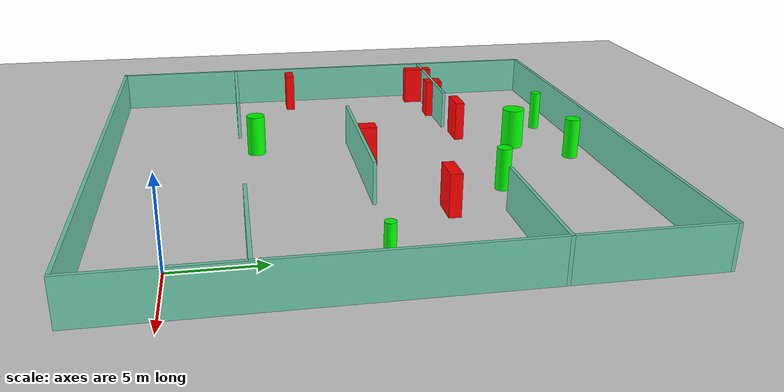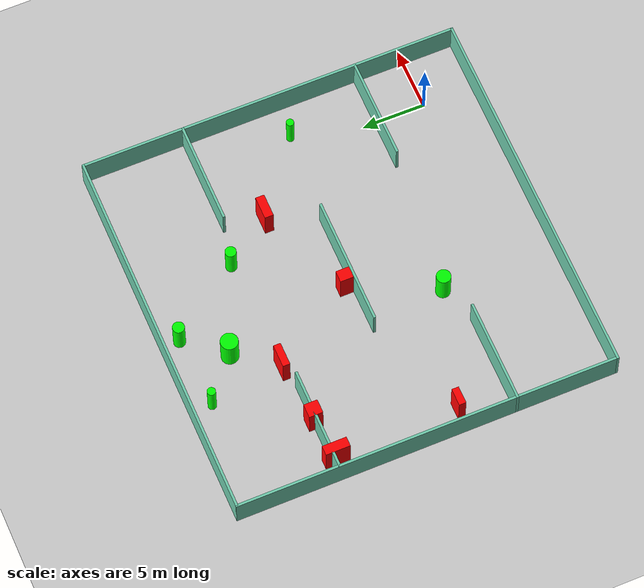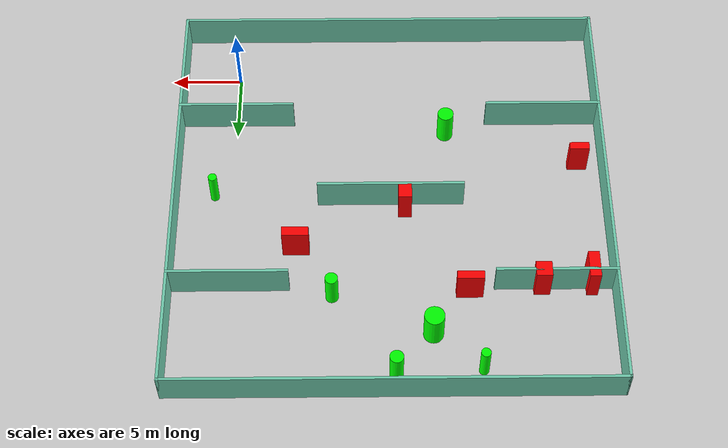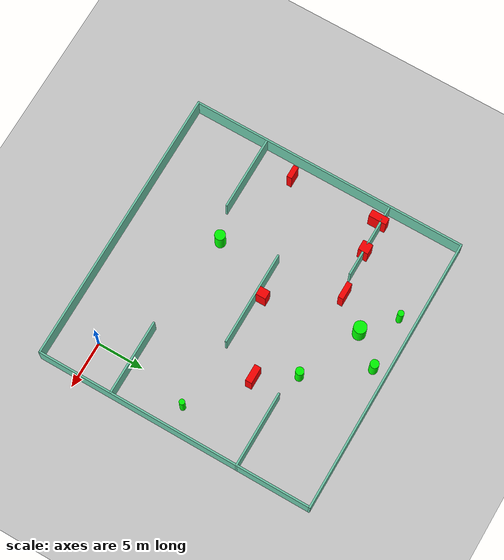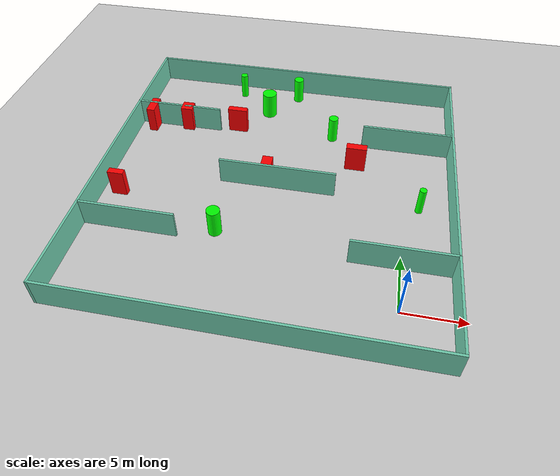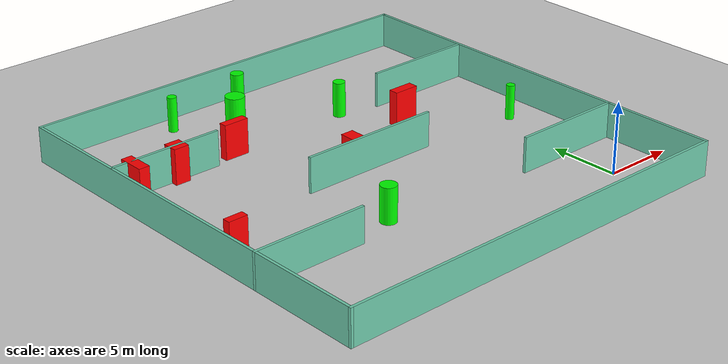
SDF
<sdf version="1.7">
 <world name="default">
  <light name="sun" type="directional">
   <pose>0 0 10 0 -0 0</pose>
   <diffuse>0.8 0.8 0.8 1</diffuse>
   <specular>0.2 0.2 0.2 1</specular>
   <attenuation>
    <range>1000</range>
    <constant>0.9</constant>
    <linear>0.01</linear>
    <quadratic>0.001</quadratic>
   </attenuation>
   <direction>-0.5 0.1 -0.9</direction>
   <spot><inner_angle>0</inner_angle><outer_angle>0</outer_angle><falloff>0</falloff></spot>
  </light>
  <model name="ground_plane">
   <static>1</static>
   <link name="link">
    <collision name="collision">
     <geometry><plane><normal>0 0 1</normal><size>100 100</size></plane></geometry>
     <surface>
      <contact><collide_bitmask>65535</collide_bitmask></contact>
      <friction><ode><mu>100</mu><mu2>50</mu2></ode></friction>
     </surface>
    </collision>
    <visual name="visual">
     <cast_shadows>0</cast_shadows>
     <geometry><plane><normal>0 0 1</normal><size>100 100</size></plane></geometry>
     <material>
      <script><uri>file://media/materials/scripts/gazebo.material</uri><name>Gazebo/Grey</name></script>
     </material>
    </visual>
   </link>
  </model>
  <gravity>0 0 -9.8</gravity>
  <magnetic_field>6e-06 2.3e-05 -4.2e-05</magnetic_field>
  <atmosphere type="adiabatic"/>
  <physics type="ode">
   <max_step_size>0.001</max_step_size>
   <real_time_factor>1</real_time_factor>
   <real_time_update_rate>1000</real_time_update_rate>
  </physics>
  <scene><ambient>0.4 0.4 0.4 1</ambient><background>0.7 0.7 0.7 1</background><shadows>1</shadows></scene>
  <spherical_coordinates>
   <surface_model>EARTH_WGS84</surface_model>
   <latitude_deg>0</latitude_deg>
   <longitude_deg>0</longitude_deg>
   <elevation>0</elevation>
   <heading_deg>0</heading_deg>
  </spherical_coordinates>
  <model name="my_base_walls">
   <link name="Wall_10">
    <collision name="Wall_10_Collision">
     <geometry><box><size>8.2 0.2 2.5</size></box></geometry>
     <pose>0 0 1.25 0 -0 0</pose>
    </collision>
    <visual name="Wall_10_Visual">
     <pose>0 0 1.25 0 -0 0</pose>
     <geometry><box><size>8.2 0.2 2.5</size></box></geometry>
     <material>
      <script><uri>file://media/materials/scripts/gazebo.material</uri><name>Gazebo/Grey</name></script>
      <ambient>0.435294 0.796078 0.67451 1</ambient>
     </material>
     <meta><layer>0</layer></meta>
    </visual>
    <pose>-11 -7 0 0 -0 0</pose>
   </link>
   <link name="Wall_12">
    <collision name="Wall_12_Collision">
     <geometry><box><size>8.2 0.2 2.5</size></box></geometry>
     <pose>0 0 1.25 0 -0 0</pose>
    </collision>
    <visual name="Wall_12_Visual">
     <pose>0 0 1.25 0 -0 0</pose>
     <geometry><box><size>8.2 0.2 2.5</size></box></geometry>
     <material>
      <script><uri>file://media/materials/scripts/gazebo.material</uri><name>Gazebo/Grey</name></script>
      <ambient>0.435294 0.796078 0.67451 1</ambient>
     </material>
     <meta><layer>0</layer></meta>
    </visual>
    <pose>-11 7 0 0 -0 0</pose>
   </link>
   <link name="Wall_14">
    <collision name="Wall_14_Collision">
     <geometry><box><size>8.2 0.2 2.5</size></box></geometry>
     <pose>0 0 1.25 0 -0 0</pose>
    </collision>
    <visual name="Wall_14_Visual">
     <pose>0 0 1.25 0 -0 0</pose>
     <geometry><box><size>8.2 0.2 2.5</size></box></geometry>
     <material>
      <script><uri>file://media/materials/scripts/gazebo.material</uri><name>Gazebo/Grey</name></script>
      <ambient>0.435294 0.796078 0.67451 1</ambient>
     </material>
     <meta><layer>0</layer></meta>
    </visual>
    <pose>11 7 0 0 -0 3.14159</pose>
   </link>
   <link name="Wall_16">
    <collision name="Wall_16_Collision">
     <geometry><box><size>10.2 0.2 2.5</size></box></geometry>
     <pose>0 0 1.25 0 -0 0</pose>
    </collision>
    <visual name="Wall_16_Visual">
     <pose>0 0 1.25 0 -0 0</pose>
     <geometry><box><size>10.2 0.2 2.5</size></box></geometry>
     <material>
      <script><uri>file://media/materials/scripts/gazebo.material</uri><name>Gazebo/Grey</name></script>
      <ambient>0.435294 0.796078 0.67451 1</ambient>
     </material>
     <meta><layer>0</layer></meta>
    </visual>
    <pose>0 0 0 0 -0 3.14159</pose>
   </link>
   <link name="Wall_2">
    <collision name="Wall_2_Collision">
     <geometry><box><size>30.2 0.2 2.5</size></box></geometry>
     <pose>0 0 1.25 0 -0 0</pose>
    </collision>
    <visual name="Wall_2_Visual">
     <pose>0 0 1.25 0 -0 0</pose>
     <geometry><box><size>30.2 0.2 2.5</size></box></geometry>
     <material>
      <script><uri>file://media/materials/scripts/gazebo.material</uri><name>Gazebo/Grey</name></script>
      <ambient>0.435294 0.796078 0.67451 1</ambient>
     </material>
     <meta><layer>0</layer></meta>
    </visual>
    <pose>0 -15 0 0 -0 3.14159</pose>
   </link>
   <link name="Wall_3">
    <collision name="Wall_3_Collision">
     <geometry><box><size>30.2 0.2 2.5</size></box></geometry>
     <pose>0 0 1.25 0 -0 0</pose>
    </collision>
    <visual name="Wall_3_Visual">
     <pose>0 0 1.25 0 -0 0</pose>
     <geometry><box><size>30.2 0.2 2.5</size></box></geometry>
     <material>
      <script><uri>file://media/materials/scripts/gazebo.material</uri><name>Gazebo/Grey</name></script>
      <ambient>0.435294 0.796078 0.67451 1</ambient>
     </material>
     <meta><layer>0</layer></meta>
    </visual>
    <pose>-15 0 0 0 -0 1.5708</pose>
   </link>
   <link name="Wall_4">
    <collision name="Wall_4_Collision">
     <geometry><box><size>30.2 0.2 2.5</size></box></geometry>
     <pose>0 0 1.25 0 -0 0</pose>
    </collision>
    <visual name="Wall_4_Visual">
     <pose>0 0 1.25 0 -0 0</pose>
     <geometry><box><size>30.2 0.2 2.5</size></box></geometry>
     <material>
      <script><uri>file://media/materials/scripts/gazebo.material</uri><name>Gazebo/Grey</name></script>
      <ambient>0.435294 0.796078 0.67451 1</ambient>
     </material>
     <meta><layer>0</layer></meta>
    </visual>
    <pose>0 15 0 0 -0 0</pose>
   </link>
   <link name="Wall_6">
    <collision name="Wall_6_Collision">
     <geometry><box><size>30.2 0.2 2.5</size></box></geometry>
     <pose>0 0 1.25 0 -0 0</pose>
    </collision>
    <visual name="Wall_6_Visual">
     <pose>0 0 1.25 0 -0 0</pose>
     <geometry><box><size>30.2 0.2 2.5</size></box></geometry>
     <material>
      <script><uri>file://media/materials/scripts/gazebo.material</uri><name>Gazebo/Grey</name></script>
      <ambient>0.435294 0.796078 0.67451 1</ambient>
     </material>
     <meta><layer>0</layer></meta>
    </visual>
    <pose>15 0 0 0 -0 1.5708</pose>
   </link>
   <link name="Wall_8">
    <collision name="Wall_8_Collision">
     <geometry><box><size>8.2 0.2 2.5</size></box></geometry>
     <pose>0 0 1.25 0 -0 0</pose>
    </collision>
    <visual name="Wall_8_Visual">
     <pose>0 0 1.25 0 -0 0</pose>
     <geometry><box><size>8.2 0.2 2.5</size></box></geometry>
     <material>
      <script><uri>file://media/materials/scripts/gazebo.material</uri><name>Gazebo/Grey</name></script>
      <ambient>0.435294 0.796078 0.67451 1</ambient>
     </material>
     <meta><layer>0</layer></meta>
    </visual>
    <pose>11 -7 0 0 -0 3.14159</pose>
   </link>
   <static>1</static>
   <pose>-11 11 0 0 -0 0</pose>
  </model>
  <model name="cylinder1">
   <static>1</static>
   <link name="link">
    <inertial>
     <mass>1</mass>
     <inertia><ixx>0.5</ixx><ixy>0</ixy><ixz>0</ixz><iyy>0.5</iyy><iyz>0</iyz><izz>1</izz></inertia>
    </inertial>
    <collision name="collision">
     <geometry><cylinder><radius>0.3002259259225724</radius><length>2.5</length></cylinder></geometry>
    </collision>
    <visual name="visual">
     <geometry><cylinder><radius>0.3002259259225724</radius><length>2.5</length></cylinder></geometry>
     <material>
      <ambient>0 1 0 1</ambient>
      <diffuse>0 1 0 1</diffuse>
      <specular>0.1 0.1 0.1 1</specular>
      <emissive>0 0 0 0</emissive>
     </material>
    </visual>
   </link>
   <pose>1.3487859524886332 10.404396722732802 1.25 0 0 0</pose>
  </model>
  <model name="cylinder2">
   <static>1</static>
   <link name="link">
    <inertial>
     <mass>1</mass>
     <inertia><ixx>0.5</ixx><ixy>0</ixy><ixz>0</ixz><iyy>0.5</iyy><iyz>0</iyz><izz>1</izz></inertia>
    </inertial>
    <collision name="collision">
     <geometry><cylinder><radius>0.4616088593058224</radius><length>2.5</length></cylinder></geometry>
    </collision>
    <visual name="visual">
     <geometry><cylinder><radius>0.4616088593058224</radius><length>2.5</length></cylinder></geometry>
     <material>
      <ambient>0 1 0 1</ambient>
      <diffuse>0 1 0 1</diffuse>
      <specular>0.1 0.1 0.1 1</specular>
      <emissive>0 0 0 0</emissive>
     </material>
    </visual>
   </link>
   <pose>-11.209790147286007 24.5110482097564 1.25 0 0 0</pose>
  </model>
  <model name="cylinder3">
   <static>1</static>
   <link name="link">
    <inertial>
     <mass>1</mass>
     <inertia><ixx>0.5</ixx><ixy>0</ixy><ixz>0</ixz><iyy>0.5</iyy><iyz>0</iyz><izz>1</izz></inertia>
    </inertial>
    <collision name="collision">
     <geometry><cylinder><radius>0.5621917603480975</radius><length>2.5</length></cylinder></geometry>
    </collision>
    <visual name="visual">
     <geometry><cylinder><radius>0.5621917603480975</radius><length>2.5</length></cylinder></geometry>
     <material>
      <ambient>0 1 0 1</ambient>
      <diffuse>0 1 0 1</diffuse>
      <specular>0.1 0.1 0.1 1</specular>
      <emissive>0 0 0 0</emissive>
     </material>
    </visual>
   </link>
   <pose>-14.983286583736072 5.003216645797247 1.25 0 0 0</pose>
  </model>
  <model name="cylinder4">
   <static>1</static>
   <link name="link">
    <inertial>
     <mass>1</mass>
     <inertia><ixx>0.5</ixx><ixy>0</ixy><ixz>0</ixz><iyy>0.5</iyy><iyz>0</iyz><izz>1</izz></inertia>
    </inertial>
    <collision name="collision">
     <geometry><cylinder><radius>0.6831128610199922</radius><length>2.5</length></cylinder></geometry>
    </collision>
    <visual name="visual">
     <geometry><cylinder><radius>0.6831128610199922</radius><length>2.5</length></cylinder></geometry>
     <material>
      <ambient>0 1 0 1</ambient>
      <diffuse>0 1 0 1</diffuse>
      <specular>0.1 0.1 0.1 1</specular>
      <emissive>0 0 0 0</emissive>
     </material>
    </visual>
   </link>
   <pose>-13.715510335307533 21.530867923700857 1.25 0 0 0</pose>
  </model>
  <model name="cylinder5">
   <static>1</static>
   <link name="link">
    <inertial>
     <mass>1</mass>
     <inertia><ixx>0.5</ixx><ixy>0</ixy><ixz>0</ixz><iyy>0.5</iyy><iyz>0</iyz><izz>1</izz></inertia>
    </inertial>
    <collision name="collision">
     <geometry><cylinder><radius>0.43373837702119755</radius><length>2.5</length></cylinder></geometry>
    </collision>
    <visual name="visual">
     <geometry><cylinder><radius>0.43373837702119755</radius><length>2.5</length></cylinder></geometry>
     <material>
      <ambient>0 1 0 1</ambient>
      <diffuse>0 1 0 1</diffuse>
      <specular>0.1 0.1 0.1 1</specular>
      <emissive>0 0 0 0</emissive>
     </material>
    </visual>
   </link>
   <pose>-6.96425481458351 18.642731694744786 1.25 0 0 0</pose>
  </model>
  <model name="cylinder6">
   <static>1</static>
   <link name="link">
    <inertial>
     <mass>1</mass>
     <inertia><ixx>0.5</ixx><ixy>0</ixy><ixz>0</ixz><iyy>0.5</iyy><iyz>0</iyz><izz>1</izz></inertia>
    </inertial>
    <collision name="collision">
     <geometry><cylinder><radius>0.32856601237879574</radius><length>2.5</length></cylinder></geometry>
    </collision>
    <visual name="visual">
     <geometry><cylinder><radius>0.32856601237879574</radius><length>2.5</length></cylinder></geometry>
     <material>
      <ambient>0 1 0 1</ambient>
      <diffuse>0 1 0 1</diffuse>
      <specular>0.1 0.1 0.1 1</specular>
      <emissive>0 0 0 0</emissive>
     </material>
    </visual>
   </link>
   <pose>-16.931002416569733 24.255039045631367 1.25 0 0 0</pose>
  </model>
  <model name="box1">
   <static>1</static>
   <link name="link">
    <inertial>
     <mass>1</mass>
     <inertia><ixx>0.083</ixx><ixy>0</ixy><ixz>0</ixz><iyy>0.083</iyy><iyz>0</iyz><izz>0.083</izz></inertia>
    </inertial>
    <collision name="collision">
     <geometry><box><size>1.0894194285023764 1.0900738720086358 2.5</size></box></geometry>
    </collision>
    <visual name="visual">
     <geometry><box><size>1.0894194285023764 1.0900738720086358 2.5</size></box></geometry>
     <material>
      <ambient>1 0 0 1</ambient>
      <diffuse>1 0 0 1</diffuse>
      <specular>0.1 0.1 0.1 1</specular>
      <emissive>0 0 0 0</emissive>
     </material>
    </visual>
    <sensor name="my_contact" type="contact">
     <contact><collision>box_collision</collision><topic>__default_topic__</topic></contact>
    </sensor>
   </link>
   <pose>-21.09994945304855 17.992619164964985 1.25 0 0 0</pose>
  </model>
  <model name="box2">
   <static>1</static>
   <link name="link">
    <inertial>
     <mass>1</mass>
     <inertia><ixx>0.083</ixx><ixy>0</ixy><ixz>0</ixz><iyy>0.083</iyy><iyz>0</iyz><izz>0.083</izz></inertia>
    </inertial>
    <collision name="collision">
     <geometry><box><size>1.8155473515439162 0.5699654208823438 2.5</size></box></geometry>
    </collision>
    <visual name="visual">
     <geometry><box><size>1.8155473515439162 0.5699654208823438 2.5</size></box></geometry>
     <material>
      <ambient>1 0 0 1</ambient>
      <diffuse>1 0 0 1</diffuse>
      <specular>0.1 0.1 0.1 1</specular>
      <emissive>0 0 0 0</emissive>
     </material>
    </visual>
    <sensor name="my_contact" type="contact">
     <contact><collision>box_collision</collision><topic>__default_topic__</topic></contact>
    </sensor>
   </link>
   <pose>-16.22128049319533 18.432406255762654 1.25 0 0 0</pose>
  </model>
  <model name="box3">
   <static>1</static>
   <link name="link">
    <inertial>
     <mass>1</mass>
     <inertia><ixx>0.083</ixx><ixy>0</ixy><ixz>0</ixz><iyy>0.083</iyy><iyz>0</iyz><izz>0.083</izz></inertia>
    </inertial>
    <collision name="collision">
     <geometry><box><size>0.9238399831667758 1.0741139542859959 2.5</size></box></geometry>
    </collision>
    <visual name="visual">
     <geometry><box><size>0.9238399831667758 1.0741139542859959 2.5</size></box></geometry>
     <material>
      <ambient>1 0 0 1</ambient>
      <diffuse>1 0 0 1</diffuse>
      <specular>0.1 0.1 0.1 1</specular>
      <emissive>0 0 0 0</emissive>
     </material>
    </visual>
    <sensor name="my_contact" type="contact">
     <contact><collision>box_collision</collision><topic>__default_topic__</topic></contact>
    </sensor>
   </link>
   <pose>-11.98000442135412 11.629184592744055 1.25 0 0 0</pose>
  </model>
  <model name="box4">
   <static>1</static>
   <link name="link">
    <inertial>
     <mass>1</mass>
     <inertia><ixx>0.083</ixx><ixy>0</ixy><ixz>0</ixz><iyy>0.083</iyy><iyz>0</iyz><izz>0.083</izz></inertia>
    </inertial>
    <collision name="collision">
     <geometry><box><size>0.7581992777360278 1.9170662133536047 2.5</size></box></geometry>
    </collision>
    <visual name="visual">
     <geometry><box><size>0.7581992777360278 1.9170662133536047 2.5</size></box></geometry>
     <material>
      <ambient>1 0 0 1</ambient>
      <diffuse>1 0 0 1</diffuse>
      <specular>0.1 0.1 0.1 1</specular>
      <emissive>0 0 0 0</emissive>
     </material>
    </visual>
    <sensor name="my_contact" type="contact">
     <contact><collision>box_collision</collision><topic>__default_topic__</topic></contact>
    </sensor>
   </link>
   <pose>-24.483957135606936 17.630571688583775 1.25 0 0 0</pose>
  </model>
  <model name="box5">
   <static>1</static>
   <link name="link">
    <inertial>
     <mass>1</mass>
     <inertia><ixx>0.083</ixx><ixy>0</ixy><ixz>0</ixz><iyy>0.083</iyy><iyz>0</iyz><izz>0.083</izz></inertia>
    </inertial>
    <collision name="collision">
     <geometry><box><size>1.8226511624337642 0.6970502934570757 2.5</size></box></geometry>
    </collision>
    <visual name="visual">
     <geometry><box><size>1.8226511624337642 0.6970502934570757 2.5</size></box></geometry>
     <material>
      <ambient>1 0 0 1</ambient>
      <diffuse>1 0 0 1</diffuse>
      <specular>0.1 0.1 0.1 1</specular>
      <emissive>0 0 0 0</emissive>
     </material>
    </visual>
    <sensor name="my_contact" type="contact">
     <contact><collision>box_collision</collision><topic>__default_topic__</topic></contact>
    </sensor>
   </link>
   <pose>-4.467201487203155 14.902049490422169 1.25 0 0 0</pose>
  </model>
  <model name="box6">
   <static>1</static>
   <link name="link">
    <inertial>
     <mass>1</mass>
     <inertia><ixx>0.083</ixx><ixy>0</ixy><ixz>0</ixz><iyy>0.083</iyy><iyz>0</iyz><izz>0.083</izz></inertia>
    </inertial>
    <collision name="collision">
     <geometry><box><size>1.3709405510252968 0.5531535808667037 2.5</size></box></geometry>
    </collision>
    <visual name="visual">
     <geometry><box><size>1.3709405510252968 0.5531535808667037 2.5</size></box></geometry>
     <material>
      <ambient>1 0 0 1</ambient>
      <diffuse>1 0 0 1</diffuse>
      <specular>0.1 0.1 0.1 1</specular>
      <emissive>0 0 0 0</emissive>
     </material>
    </visual>
    <sensor name="my_contact" type="contact">
     <contact><collision>box_collision</collision><topic>__default_topic__</topic></contact>
    </sensor>
   </link>
   <pose>-24.3105290677843 7.890676526319938 1.25 0 0 0</pose>
  </model>
 </world>
</sdf>
